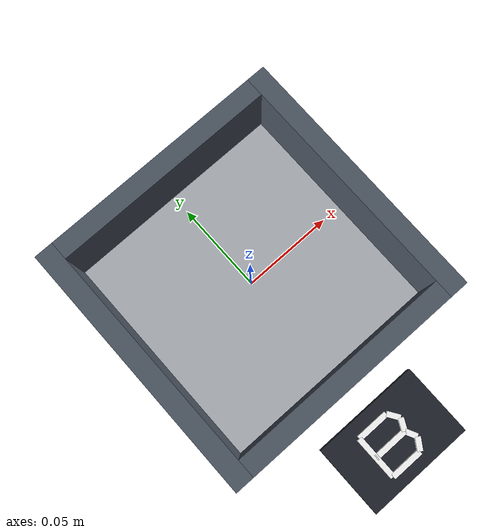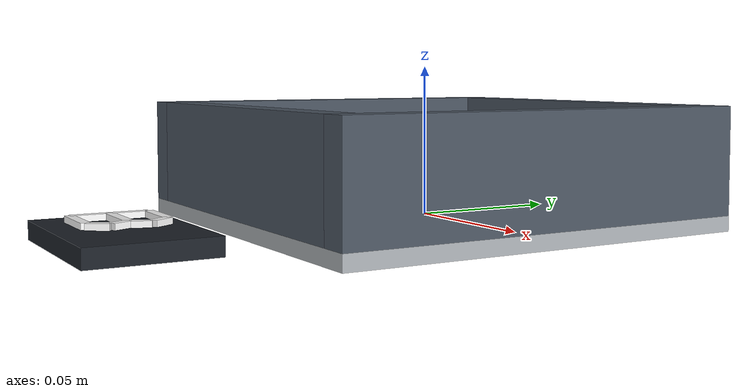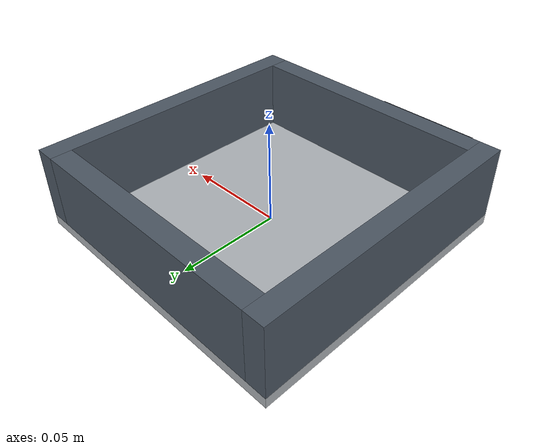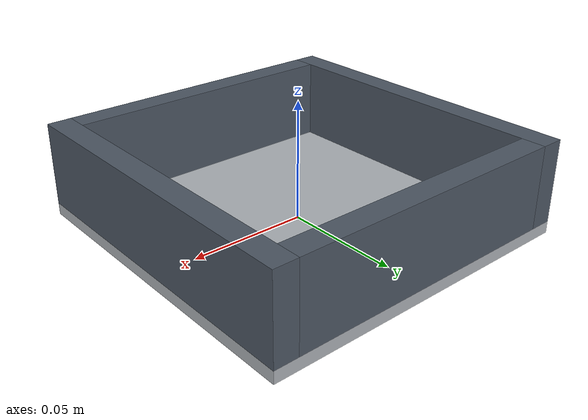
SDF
<sdf version="1.6"><model name="zone_b"><static>true</static><link name="link"><visual name="floor"><pose>0.000000 0.000000 0.000000 0 0 0.000000</pose><geometry><box><size>0.140000 0.140000 0.005000</size></box></geometry><material><ambient>0.51 0.5249999999999999 0.54 1</ambient><diffuse>0.68 0.7 0.72 1</diffuse><emissive>0.054400000000000004 0.055999999999999994 0.0576 1</emissive><specular>0.12 0.12 0.12 1</specular></material></visual><visual name="left_wall"><pose>-0.065000 0.000000 0.020000 0 0 0.000000</pose><geometry><box><size>0.010000 0.140000 0.035000</size></box></geometry><material><ambient>0.22499999999999998 0.255 0.2925 1</ambient><diffuse>0.3 0.34 0.39 1</diffuse><emissive>0.024 0.027200000000000002 0.031200000000000002 1</emissive><specular>0.12 0.12 0.12 1</specular></material></visual><visual name="right_wall"><pose>0.065000 0.000000 0.020000 0 0 0.000000</pose><geometry><box><size>0.010000 0.140000 0.035000</size></box></geometry><material><ambient>0.22499999999999998 0.255 0.2925 1</ambient><diffuse>0.3 0.34 0.39 1</diffuse><emissive>0.024 0.027200000000000002 0.031200000000000002 1</emissive><specular>0.12 0.12 0.12 1</specular></material></visual><visual name="front_wall"><pose>0.000000 -0.065000 0.020000 0 0 0.000000</pose><geometry><box><size>0.120000 0.010000 0.035000</size></box></geometry><material><ambient>0.22499999999999998 0.255 0.2925 1</ambient><diffuse>0.3 0.34 0.39 1</diffuse><emissive>0.024 0.027200000000000002 0.031200000000000002 1</emissive><specular>0.12 0.12 0.12 1</specular></material></visual><visual name="back_wall"><pose>0.000000 0.065000 0.020000 0 0 0.000000</pose><geometry><box><size>0.120000 0.010000 0.035000</size></box></geometry><material><ambient>0.22499999999999998 0.255 0.2925 1</ambient><diffuse>0.3 0.34 0.39 1</diffuse><emissive>0.024 0.027200000000000002 0.031200000000000002 1</emissive><specular>0.12 0.12 0.12 1</specular></material></visual><visual name="label_plate"><pose>0.000000 -0.105000 0.000000 0 0 0.000000</pose><geometry><box><size>0.060000 0.040000 0.006000</size></box></geometry><material><ambient>0.09 0.10500000000000001 0.1275 1</ambient><diffuse>0.12 0.14 0.17 1</diffuse><emissive>0.0096 0.011200000000000002 0.013600000000000001 1</emissive><specular>0.12 0.12 0.12 1</specular></material></visual><visual name="label_b_0"><pose>-0.012000 -0.105000 0.005000 0 0 1.570796</pose><geometry><box><size>0.024000 0.003000 0.002000</size></box></geometry><material><ambient>0.75 0.75 0.75 1</ambient><diffuse>1.0 1.0 1.0 1</diffuse><emissive>0.08 0.08 0.08 1</emissive><specular>0.12 0.12 0.12 1</specular></material></visual><visual name="label_b_1"><pose>-0.003000 -0.093000 0.005000 0 0 0.000000</pose><geometry><box><size>0.018000 0.003000 0.002000</size></box></geometry><material><ambient>0.75 0.75 0.75 1</ambient><diffuse>1.0 1.0 1.0 1</diffuse><emissive>0.08 0.08 0.08 1</emissive><specular>0.12 0.12 0.12 1</specular></material></visual><visual name="label_b_2"><pose>-0.002500 -0.105000 0.005000 0 0 0.000000</pose><geometry><box><size>0.019000 0.003000 0.002000</size></box></geometry><material><ambient>0.75 0.75 0.75 1</ambient><diffuse>1.0 1.0 1.0 1</diffuse><emissive>0.08 0.08 0.08 1</emissive><specular>0.12 0.12 0.12 1</specular></material></visual><visual name="label_b_3"><pose>-0.003000 -0.117000 0.005000 0 0 0.000000</pose><geometry><box><size>0.018000 0.003000 0.002000</size></box></geometry><material><ambient>0.75 0.75 0.75 1</ambient><diffuse>1.0 1.0 1.0 1</diffuse><emissive>0.08 0.08 0.08 1</emissive><specular>0.12 0.12 0.12 1</specular></material></visual><visual name="label_b_4"><pose>0.008000 -0.096000 0.005000 0 0 -0.982794</pose><geometry><box><size>0.007211 0.003000 0.002000</size></box></geometry><material><ambient>0.75 0.75 0.75 1</ambient><diffuse>1.0 1.0 1.0 1</diffuse><emissive>0.08 0.08 0.08 1</emissive><specular>0.12 0.12 0.12 1</specular></material></visual><visual name="label_b_5"><pose>0.008500 -0.102000 0.005000 0 0 -2.034444</pose><geometry><box><size>0.006708 0.003000 0.002000</size></box></geometry><material><ambient>0.75 0.75 0.75 1</ambient><diffuse>1.0 1.0 1.0 1</diffuse><emissive>0.08 0.08 0.08 1</emissive><specular>0.12 0.12 0.12 1</specular></material></visual><visual name="label_b_6"><pose>0.008500 -0.108000 0.005000 0 0 -1.107149</pose><geometry><box><size>0.006708 0.003000 0.002000</size></box></geometry><material><ambient>0.75 0.75 0.75 1</ambient><diffuse>1.0 1.0 1.0 1</diffuse><emissive>0.08 0.08 0.08 1</emissive><specular>0.12 0.12 0.12 1</specular></material></visual><visual name="label_b_7"><pose>0.008000 -0.114000 0.005000 0 0 -2.158799</pose><geometry><box><size>0.007211 0.003000 0.002000</size></box></geometry><material><ambient>0.75 0.75 0.75 1</ambient><diffuse>1.0 1.0 1.0 1</diffuse><emissive>0.08 0.08 0.08 1</emissive><specular>0.12 0.12 0.12 1</specular></material></visual><collision name="floor_collision"><pose>0.000000 0.000000 0.000000 0 0 0.000000</pose><geometry><box><size>0.140000 0.140000 0.005000</size></box></geometry></collision><collision name="left_wall_collision"><pose>-0.065000 0.000000 0.020000 0 0 0.000000</pose><geometry><box><size>0.010000 0.140000 0.035000</size></box></geometry></collision><collision name="right_wall_collision"><pose>0.065000 0.000000 0.020000 0 0 0.000000</pose><geometry><box><size>0.010000 0.140000 0.035000</size></box></geometry></collision><collision name="front_wall_collision"><pose>0.000000 -0.065000 0.020000 0 0 0.000000</pose><geometry><box><size>0.120000 0.010000 0.035000</size></box></geometry></collision><collision name="back_wall_collision"><pose>0.000000 0.065000 0.020000 0 0 0.000000</pose><geometry><box><size>0.120000 0.010000 0.035000</size></box></geometry></collision></link></model></sdf>
